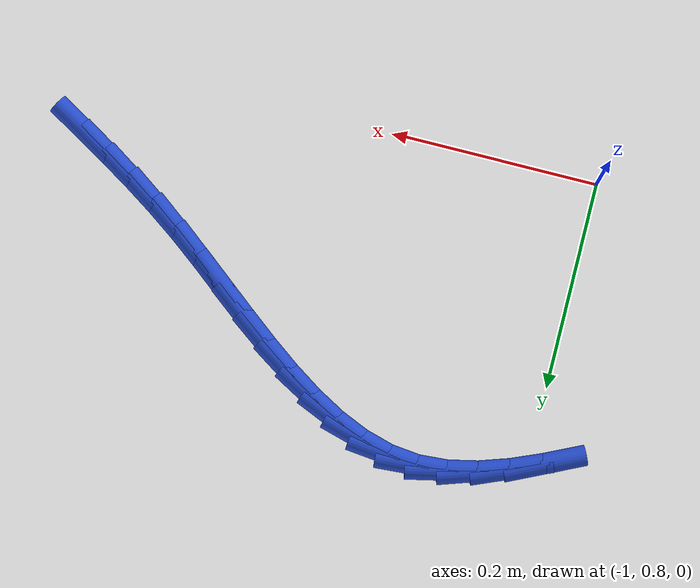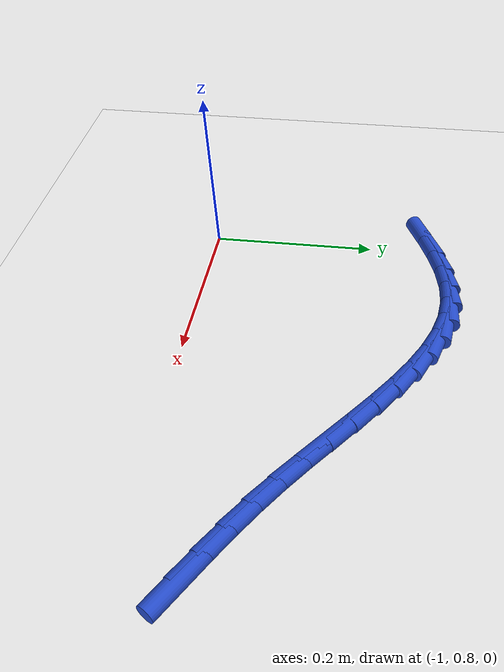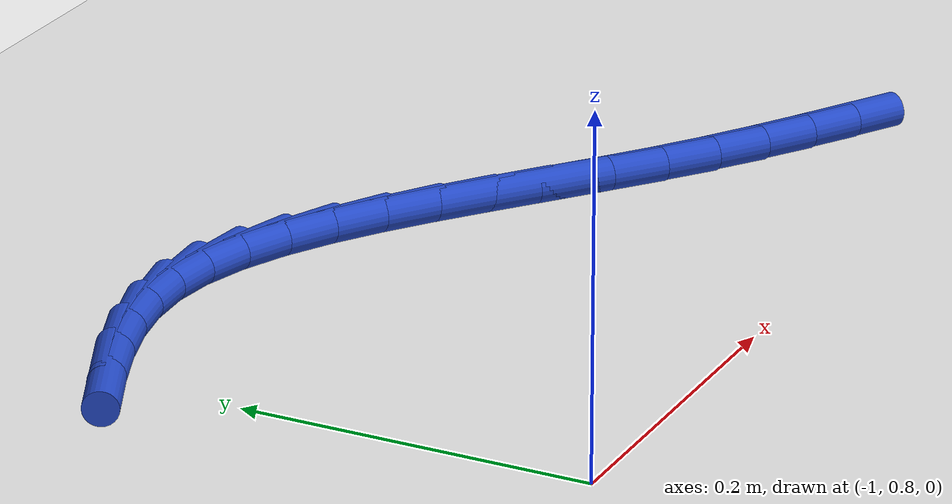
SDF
<sdf version="1.6">
 <world name="default">
  <model name="ground_plane">
   <static>1</static>
   <link name="link">
    <collision name="collision">
     <geometry><plane><normal>0 0 1</normal><size>100 100</size></plane></geometry>
     <surface><friction><ode><mu>100</mu><mu2>50</mu2></ode></friction></surface>
    </collision>
    <visual name="visual">
     <cast_shadows>0</cast_shadows>
     <geometry><plane><normal>0 0 1</normal><size>100 100</size></plane></geometry>
     <material>
      <script><uri>file://media/materials/scripts/gazebo.material</uri><name>Gazebo/WhiteGlow</name></script>
     </material>
    </visual>
   </link>
  </model>
  <model name="line">
   <link name="link_34">
    <pose>-0.5193323432689506 0.8702557322496259 0.01 0 1.57 -0.5378299260536323</pose>
    <collision name="collision">
     <geometry><cylinder><radius>0.01</radius><length>0.08</length></cylinder></geometry>
    </collision>
    <visual name="visual">
     <material>
      <script><name>Gazebo/Blue</name><uri>file://media/materials/scripts/gazebo.material</uri></script>
     </material>
     <geometry><cylinder><radius>0.01</radius><length>0.08</length></cylinder></geometry>
    </visual>
   </link>
   <link name="link_35">
    <pose>-0.5463573497185578 0.8863757063255084 0.01 0 1.57 -0.5581557091165403</pose>
    <collision name="collision">
     <geometry><cylinder><radius>0.01</radius><length>0.08</length></cylinder></geometry>
    </collision>
    <visual name="visual">
     <material>
      <script><name>Gazebo/Blue</name><uri>file://media/materials/scripts/gazebo.material</uri></script>
     </material>
     <geometry><cylinder><radius>0.01</radius><length>0.08</length></cylinder></geometry>
    </visual>
   </link>
   <link name="link_36">
    <pose>-0.5733652767914065 0.903239004445284 0.01 0 1.57 -0.5857483779901602</pose>
    <collision name="collision">
     <geometry><cylinder><radius>0.01</radius><length>0.08</length></cylinder></geometry>
    </collision>
    <visual name="visual">
     <material>
      <script><name>Gazebo/Blue</name><uri>file://media/materials/scripts/gazebo.material</uri></script>
     </material>
     <geometry><cylinder><radius>0.01</radius><length>0.08</length></cylinder></geometry>
    </visual>
   </link>
   <link name="link_37">
    <pose>-0.6003153991886154 0.921118131849698 0.01 0 1.57 -0.6199470423123975</pose>
    <collision name="collision">
     <geometry><cylinder><radius>0.01</radius><length>0.08</length></cylinder></geometry>
    </collision>
    <visual name="visual">
     <material>
      <script><name>Gazebo/Blue</name><uri>file://media/materials/scripts/gazebo.material</uri></script>
     </material>
     <geometry><cylinder><radius>0.01</radius><length>0.08</length></cylinder></geometry>
    </visual>
   </link>
   <link name="link_38">
    <pose>-0.6271669930591545 0.9402855798955739 0.01 0 1.57 -0.6552976232309352</pose>
    <collision name="collision">
     <geometry><cylinder><radius>0.01</radius><length>0.08</length></cylinder></geometry>
    </collision>
    <visual name="visual">
     <material>
      <script><name>Gazebo/Blue</name><uri>file://media/materials/scripts/gazebo.material</uri></script>
     </material>
     <geometry><cylinder><radius>0.01</radius><length>0.08</length></cylinder></geometry>
    </visual>
   </link>
   <link name="link_39">
    <pose>-0.6538983752682669 0.9608312522392101 0.01 0 1.57 -0.6758624609758725</pose>
    <collision name="collision">
     <geometry><cylinder><radius>0.01</radius><length>0.08</length></cylinder></geometry>
    </collision>
    <visual name="visual">
     <material>
      <script><name>Gazebo/Blue</name><uri>file://media/materials/scripts/gazebo.material</uri></script>
     </material>
     <geometry><cylinder><radius>0.01</radius><length>0.08</length></cylinder></geometry>
    </visual>
   </link>
   <link name="link_40">
    <pose>-0.6805545789996227 0.9822052877825593 0.01 0 1.57 -0.6793010369439788</pose>
    <collision name="collision">
     <geometry><cylinder><radius>0.01</radius><length>0.08</length></cylinder></geometry>
    </collision>
    <visual name="visual">
     <material>
      <script><name>Gazebo/Blue</name><uri>file://media/materials/scripts/gazebo.material</uri></script>
     </material>
     <geometry><cylinder><radius>0.01</radius><length>0.08</length></cylinder></geometry>
    </visual>
   </link>
   <link name="link_41">
    <pose>-0.7071952414934762 1.0037177823182872 0.01 0 1.57 -0.665840706513501</pose>
    <collision name="collision">
     <geometry><cylinder><radius>0.01</radius><length>0.08</length></cylinder></geometry>
    </collision>
    <visual name="visual">
     <material>
      <script><name>Gazebo/Blue</name><uri>file://media/materials/scripts/gazebo.material</uri></script>
     </material>
     <geometry><cylinder><radius>0.01</radius><length>0.08</length></cylinder></geometry>
    </visual>
   </link>
   <link name="link_42">
    <pose>-0.7338799999900811 1.0246788316390563 0.01 0 1.57 -0.6345623281032866</pose>
    <collision name="collision">
     <geometry><cylinder><radius>0.01</radius><length>0.08</length></cylinder></geometry>
    </collision>
    <visual name="visual">
     <material>
      <script><name>Gazebo/Blue</name><uri>file://media/materials/scripts/gazebo.material</uri></script>
     </material>
     <geometry><cylinder><radius>0.01</radius><length>0.08</length></cylinder></geometry>
    </visual>
   </link>
   <link name="link_43">
    <pose>-0.7606684917296919 1.0443985315375317 0.01 0 1.57 -0.5833786205682988</pose>
    <collision name="collision">
     <geometry><cylinder><radius>0.01</radius><length>0.08</length></cylinder></geometry>
    </collision>
    <visual name="visual">
     <material>
      <script><name>Gazebo/Blue</name><uri>file://media/materials/scripts/gazebo.material</uri></script>
     </material>
     <geometry><cylinder><radius>0.01</radius><length>0.08</length></cylinder></geometry>
    </visual>
   </link>
   <link name="link_44">
    <pose>-0.7876203539525625 1.0621869778063777 0.01 0 1.57 -0.5090686201910547</pose>
    <collision name="collision">
     <geometry><cylinder><radius>0.01</radius><length>0.08</length></cylinder></geometry>
    </collision>
    <visual name="visual">
     <material>
      <script><name>Gazebo/Blue</name><uri>file://media/materials/scripts/gazebo.material</uri></script>
     </material>
     <geometry><cylinder><radius>0.01</radius><length>0.08</length></cylinder></geometry>
    </visual>
   </link>
   <link name="link_45">
    <pose>-0.8147952238989468 1.0773542662382578 0.01 0 1.57 -0.4076183742638912</pose>
    <collision name="collision">
     <geometry><cylinder><radius>0.01</radius><length>0.08</length></cylinder></geometry>
    </collision>
    <visual name="visual">
     <material>
      <script><name>Gazebo/Blue</name><uri>file://media/materials/scripts/gazebo.material</uri></script>
     </material>
     <geometry><cylinder><radius>0.01</radius><length>0.08</length></cylinder></geometry>
    </visual>
   </link>
   <link name="link_46">
    <pose>-0.8422527388090992 1.089210492625837 0.01 0 1.57 -0.2753859879252237</pose>
    <collision name="collision">
     <geometry><cylinder><radius>0.01</radius><length>0.08</length></cylinder></geometry>
    </collision>
    <visual name="visual">
     <material>
      <script><name>Gazebo/Blue</name><uri>file://media/materials/scripts/gazebo.material</uri></script>
     </material>
     <geometry><cylinder><radius>0.01</radius><length>0.08</length></cylinder></geometry>
    </visual>
   </link>
   <link name="link_47">
    <pose>-0.8700525359232736 1.0970657527617786 0.01 0 1.57 -0.11174718933897536</pose>
    <collision name="collision">
     <geometry><cylinder><radius>0.01</radius><length>0.08</length></cylinder></geometry>
    </collision>
    <visual name="visual">
     <material>
      <script><name>Gazebo/Blue</name><uri>file://media/materials/scripts/gazebo.material</uri></script>
     </material>
     <geometry><cylinder><radius>0.01</radius><length>0.08</length></cylinder></geometry>
    </visual>
   </link>
   <link name="link_48">
    <pose>-0.8982542319171419 1.1002303967643918 0.01 0 1.57 0.06527431237848366</pose>
    <collision name="collision">
     <geometry><cylinder><radius>0.01</radius><length>0.08</length></cylinder></geometry>
    </collision>
    <visual name="visual">
     <material>
      <script><name>Gazebo/Blue</name><uri>file://media/materials/scripts/gazebo.material</uri></script>
     </material>
     <geometry><cylinder><radius>0.01</radius><length>0.08</length></cylinder></geometry>
    </visual>
   </link>
   <link name="link_49">
    <pose>-0.9268896435680026 1.0983585807659266 0.01 0 1.57 0.21150004284327814</pose>
    <collision name="collision">
     <geometry><cylinder><radius>0.01</radius><length>0.08</length></cylinder></geometry>
    </collision>
    <visual name="visual">
     <material>
      <script><name>Gazebo/Blue</name><uri>file://media/materials/scripts/gazebo.material</uri></script>
     </material>
     <geometry><cylinder><radius>0.01</radius><length>0.08</length></cylinder></geometry>
    </visual>
   </link>
   <link name="link_50">
    <pose>-0.9559078205961535 1.0921280549985666 0.01 0 1.57 0.32002006329100824</pose>
    <collision name="collision">
     <geometry><cylinder><radius>0.01</radius><length>0.08</length></cylinder></geometry>
    </collision>
    <visual name="visual">
     <material>
      <script><name>Gazebo/Blue</name><uri>file://media/materials/scripts/gazebo.material</uri></script>
     </material>
     <geometry><cylinder><radius>0.01</radius><length>0.08</length></cylinder></geometry>
    </visual>
   </link>
   <link name="link_51">
    <pose>-0.985242478800576 1.0824062068757074 0.01 0 1.57 0.3953313053841322</pose>
    <collision name="collision">
     <geometry><cylinder><radius>0.01</radius><length>0.08</length></cylinder></geometry>
    </collision>
    <visual name="visual">
     <material>
      <script><name>Gazebo/Blue</name><uri>file://media/materials/scripts/gazebo.material</uri></script>
     </material>
     <geometry><cylinder><radius>0.01</radius><length>0.08</length></cylinder></geometry>
    </visual>
   </link>
   <link name="link_52">
    <pose>-1.0148273339802523 1.0700604238107445 0.01 0 1.57 0.442410856456447</pose>
    <collision name="collision">
     <geometry><cylinder><radius>0.01</radius><length>0.08</length></cylinder></geometry>
    </collision>
    <visual name="visual">
     <material>
      <script><name>Gazebo/Blue</name><uri>file://media/materials/scripts/gazebo.material</uri></script>
     </material>
     <geometry><cylinder><radius>0.01</radius><length>0.08</length></cylinder></geometry>
    </visual>
   </link>
  </model>
 </world>
</sdf>
